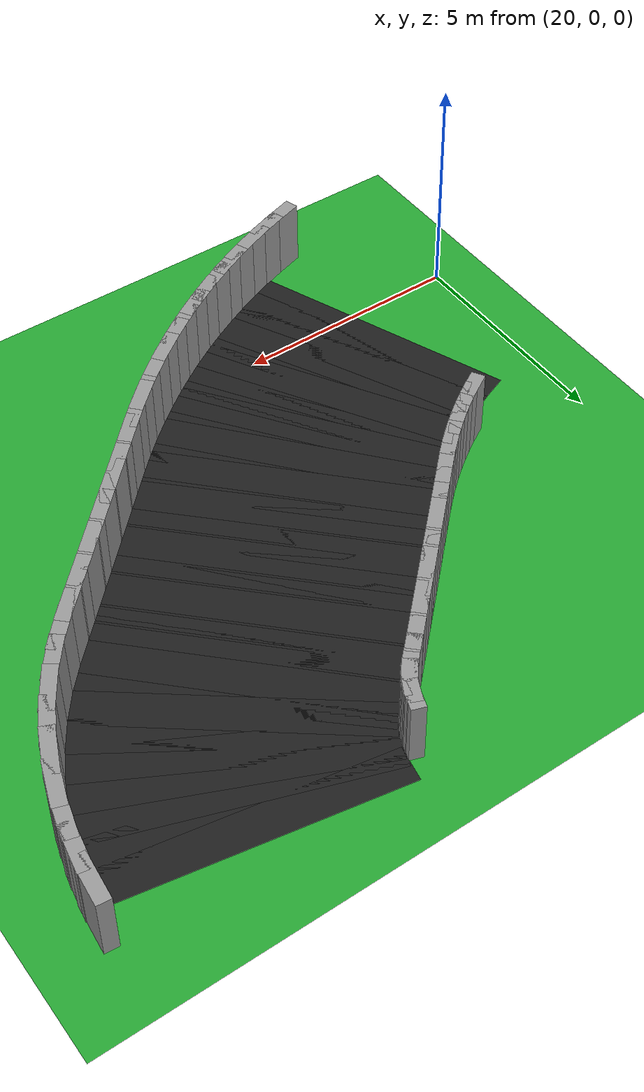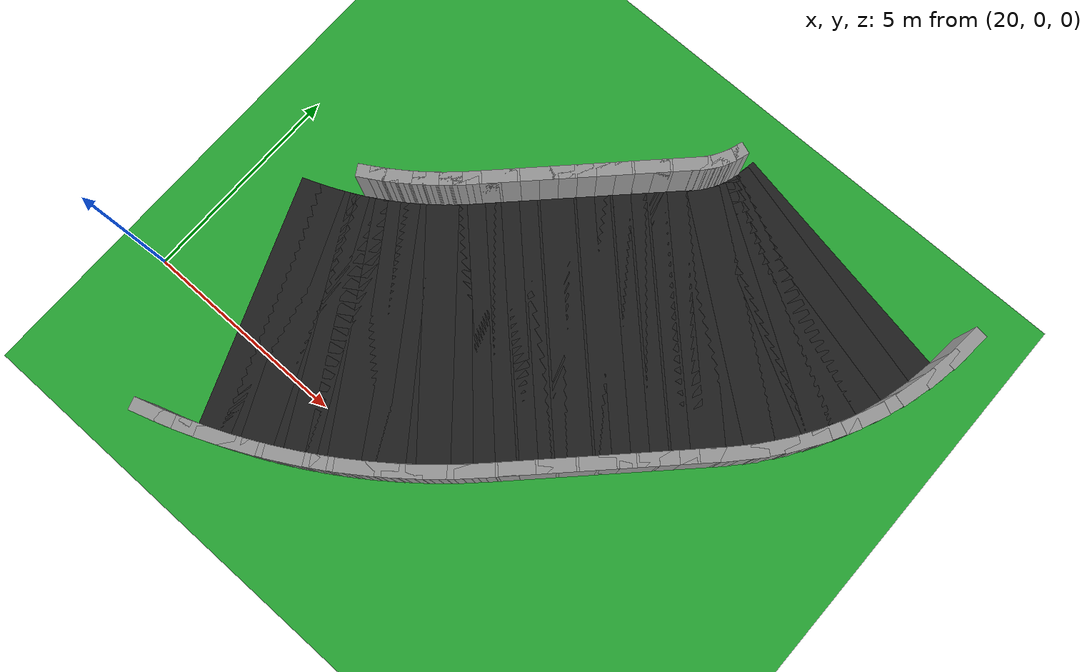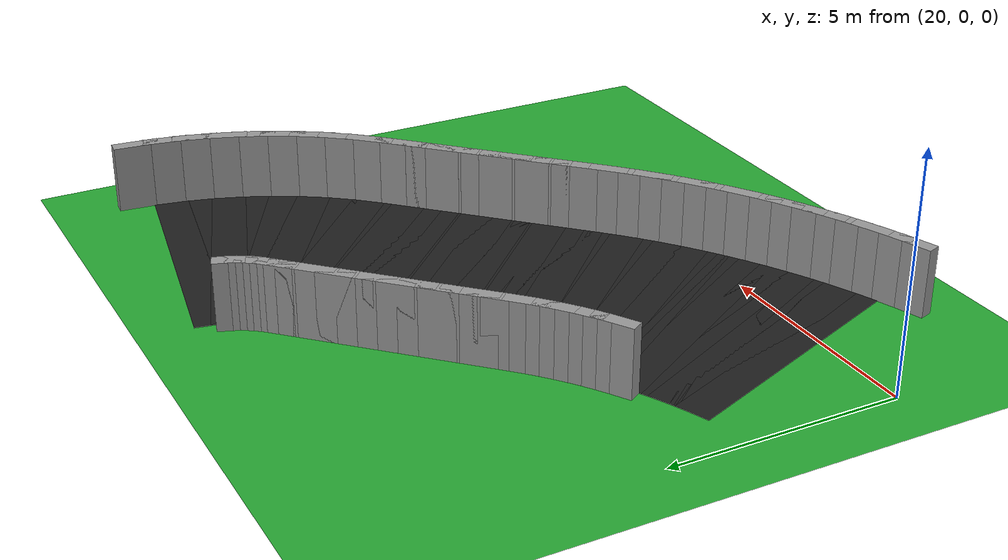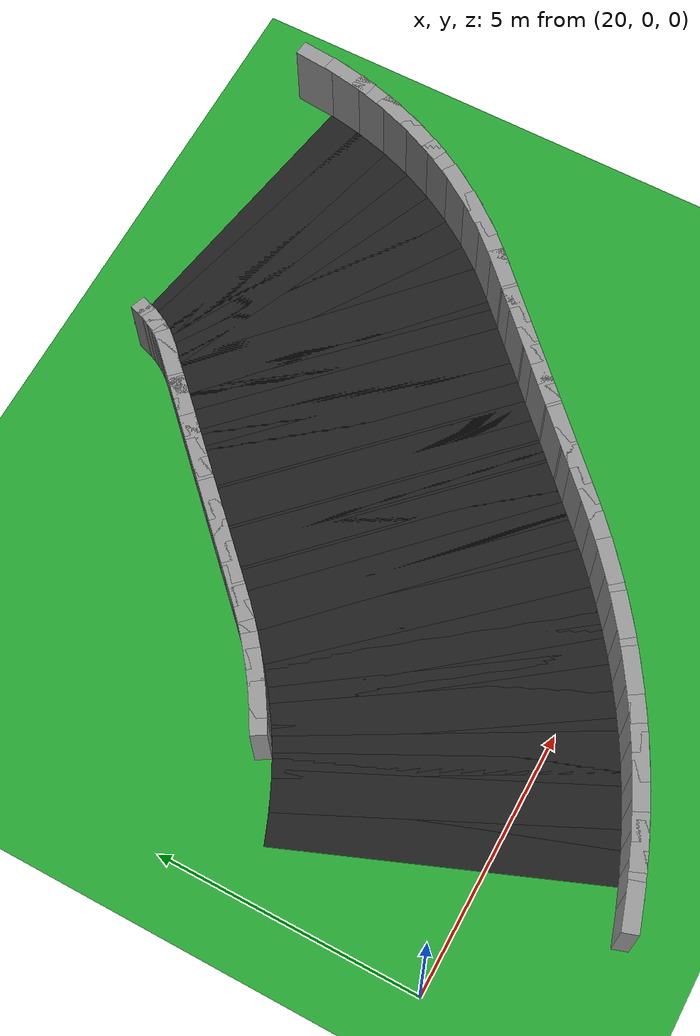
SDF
<sdf version="1.6">
 <world name="loop_road">
  <include><uri>model://sun</uri></include>
  <model name="ground_plane">
   <static>true</static>
   <link name="link">
    <collision name="collision">
     <surface><friction><ode><mu>100</mu><mu2>50</mu2></ode></friction></surface>
     <geometry><plane><normal>0 0 1</normal><size>120 120</size></plane></geometry>
    </collision>
    <visual name="visual">
     <geometry><plane><normal>0 0 1</normal><size>120 120</size></plane></geometry>
     <material>
      <script><uri>file://media/materials/scripts/gazebo.material</uri><name>Gazebo/Green</name></script>
     </material>
    </visual>
   </link>
  </model>
  <model name="curbR_54">
   <static>true</static>
   <pose>22.634 -2.422 0.750 0 0 0.31089</pose>
   <link name="link">
    <collision name="collision"><geometry><box><size>0.856 0.300 1.500</size></box></geometry></collision>
    <visual name="visual">
     <geometry><box><size>0.856 0.300 1.500</size></box></geometry>
     <material>
      <script><uri>file://media/materials/scripts/gazebo.material</uri><name>Gazebo/Grey</name></script>
     </material>
    </visual>
   </link>
  </model>
  <model name="curbR_55">
   <static>true</static>
   <pose>23.103 -2.262 0.750 0 0 0.34361</pose>
   <link name="link">
    <collision name="collision"><geometry><box><size>0.856 0.300 1.500</size></box></geometry></collision>
    <visual name="visual">
     <geometry><box><size>0.856 0.300 1.500</size></box></geometry>
     <material>
      <script><uri>file://media/materials/scripts/gazebo.material</uri><name>Gazebo/Grey</name></script>
     </material>
    </visual>
   </link>
  </model>
  <model name="asphalt_56">
   <static>true</static>
   <pose>22.410 0.841 0.005 0 0 0.37634</pose>
   <link name="link">
    <visual name="visual">
     <geometry><box><size>0.753 6.000 0.010</size></box></geometry>
     <material>
      <script><uri>file://media/materials/scripts/gazebo.material</uri><name>Gazebo/Black</name></script>
     </material>
    </visual>
   </link>
  </model>
  <model name="curbR_56">
   <static>true</static>
   <pose>23.567 -2.088 0.750 0 0 0.37634</pose>
   <link name="link">
    <collision name="collision"><geometry><box><size>0.856 0.300 1.500</size></box></geometry></collision>
    <visual name="visual">
     <geometry><box><size>0.856 0.300 1.500</size></box></geometry>
     <material>
      <script><uri>file://media/materials/scripts/gazebo.material</uri><name>Gazebo/Grey</name></script>
     </material>
    </visual>
   </link>
  </model>
  <model name="asphalt_57">
   <static>true</static>
   <pose>22.773 0.992 0.005 0 0 0.40906</pose>
   <link name="link">
    <visual name="visual">
     <geometry><box><size>0.753 6.000 0.010</size></box></geometry>
     <material>
      <script><uri>file://media/materials/scripts/gazebo.material</uri><name>Gazebo/Black</name></script>
     </material>
    </visual>
   </link>
  </model>
  <model name="curbR_57">
   <static>true</static>
   <pose>24.025 -1.898 0.750 0 0 0.40906</pose>
   <link name="link">
    <collision name="collision"><geometry><box><size>0.856 0.300 1.500</size></box></geometry></collision>
    <visual name="visual">
     <geometry><box><size>0.856 0.300 1.500</size></box></geometry>
     <material>
      <script><uri>file://media/materials/scripts/gazebo.material</uri><name>Gazebo/Grey</name></script>
     </material>
    </visual>
   </link>
  </model>
  <model name="asphalt_58">
   <static>true</static>
   <pose>23.130 1.154 0.005 0 0 0.44179</pose>
   <link name="link">
    <visual name="visual">
     <geometry><box><size>0.753 6.000 0.010</size></box></geometry>
     <material>
      <script><uri>file://media/materials/scripts/gazebo.material</uri><name>Gazebo/Black</name></script>
     </material>
    </visual>
   </link>
  </model>
  <model name="curbR_58">
   <static>true</static>
   <pose>24.477 -1.694 0.750 0 0 0.44179</pose>
   <link name="link">
    <collision name="collision"><geometry><box><size>0.856 0.300 1.500</size></box></geometry></collision>
    <visual name="visual">
     <geometry><box><size>0.856 0.300 1.500</size></box></geometry>
     <material>
      <script><uri>file://media/materials/scripts/gazebo.material</uri><name>Gazebo/Grey</name></script>
     </material>
    </visual>
   </link>
  </model>
  <model name="asphalt_59">
   <static>true</static>
   <pose>23.482 1.327 0.005 0 0 0.47451</pose>
   <link name="link">
    <visual name="visual">
     <geometry><box><size>0.753 6.000 0.010</size></box></geometry>
     <material>
      <script><uri>file://media/materials/scripts/gazebo.material</uri><name>Gazebo/Black</name></script>
     </material>
    </visual>
   </link>
  </model>
  <model name="curbR_59">
   <static>true</static>
   <pose>24.921 -1.474 0.750 0 0 0.47451</pose>
   <link name="link">
    <collision name="collision"><geometry><box><size>0.856 0.300 1.500</size></box></geometry></collision>
    <visual name="visual">
     <geometry><box><size>0.856 0.300 1.500</size></box></geometry>
     <material>
      <script><uri>file://media/materials/scripts/gazebo.material</uri><name>Gazebo/Grey</name></script>
     </material>
    </visual>
   </link>
  </model>
  <model name="asphalt_60">
   <static>true</static>
   <pose>23.829 1.512 0.005 0 0 0.50724</pose>
   <link name="link">
    <visual name="visual">
     <geometry><box><size>0.753 6.000 0.010</size></box></geometry>
     <material>
      <script><uri>file://media/materials/scripts/gazebo.material</uri><name>Gazebo/Black</name></script>
     </material>
    </visual>
   </link>
  </model>
  <model name="curbR_60">
   <static>true</static>
   <pose>25.359 -1.241 0.750 0 0 0.50724</pose>
   <link name="link">
    <collision name="collision"><geometry><box><size>0.856 0.300 1.500</size></box></geometry></collision>
    <visual name="visual">
     <geometry><box><size>0.856 0.300 1.500</size></box></geometry>
     <material>
      <script><uri>file://media/materials/scripts/gazebo.material</uri><name>Gazebo/Grey</name></script>
     </material>
    </visual>
   </link>
  </model>
  <model name="asphalt_61">
   <static>true</static>
   <pose>24.169 1.709 0.005 0 0 0.53996</pose>
   <link name="link">
    <visual name="visual">
     <geometry><box><size>0.753 6.000 0.010</size></box></geometry>
     <material>
      <script><uri>file://media/materials/scripts/gazebo.material</uri><name>Gazebo/Black</name></script>
     </material>
    </visual>
   </link>
  </model>
  <model name="curbL_61">
   <static>true</static>
   <pose>22.549 4.410 0.750 0 0 0.53996</pose>
   <link name="link">
    <collision name="collision"><geometry><box><size>0.650 0.300 1.500</size></box></geometry></collision>
    <visual name="visual">
     <geometry><box><size>0.650 0.300 1.500</size></box></geometry>
     <material>
      <script><uri>file://media/materials/scripts/gazebo.material</uri><name>Gazebo/Grey</name></script>
     </material>
    </visual>
   </link>
  </model>
  <model name="curbR_61">
   <static>true</static>
   <pose>25.788 -0.993 0.750 0 0 0.53996</pose>
   <link name="link">
    <collision name="collision"><geometry><box><size>0.856 0.300 1.500</size></box></geometry></collision>
    <visual name="visual">
     <geometry><box><size>0.856 0.300 1.500</size></box></geometry>
     <material>
      <script><uri>file://media/materials/scripts/gazebo.material</uri><name>Gazebo/Grey</name></script>
     </material>
    </visual>
   </link>
  </model>
  <model name="asphalt_62">
   <static>true</static>
   <pose>24.502 1.916 0.005 0 0 0.57269</pose>
   <link name="link">
    <visual name="visual">
     <geometry><box><size>0.753 6.000 0.010</size></box></geometry>
     <material>
      <script><uri>file://media/materials/scripts/gazebo.material</uri><name>Gazebo/Black</name></script>
     </material>
    </visual>
   </link>
  </model>
  <model name="curbL_62">
   <static>true</static>
   <pose>22.795 4.563 0.750 0 0 0.57269</pose>
   <link name="link">
    <collision name="collision"><geometry><box><size>0.650 0.300 1.500</size></box></geometry></collision>
    <visual name="visual">
     <geometry><box><size>0.650 0.300 1.500</size></box></geometry>
     <material>
      <script><uri>file://media/materials/scripts/gazebo.material</uri><name>Gazebo/Grey</name></script>
     </material>
    </visual>
   </link>
  </model>
  <model name="curbR_62">
   <static>true</static>
   <pose>26.209 -0.731 0.750 0 0 0.57269</pose>
   <link name="link">
    <collision name="collision"><geometry><box><size>0.856 0.300 1.500</size></box></geometry></collision>
    <visual name="visual">
     <geometry><box><size>0.856 0.300 1.500</size></box></geometry>
     <material>
      <script><uri>file://media/materials/scripts/gazebo.material</uri><name>Gazebo/Grey</name></script>
     </material>
    </visual>
   </link>
  </model>
  <model name="asphalt_63">
   <static>true</static>
   <pose>24.829 2.134 0.005 0 0 0.60541</pose>
   <link name="link">
    <visual name="visual">
     <geometry><box><size>0.753 6.000 0.010</size></box></geometry>
     <material>
      <script><uri>file://media/materials/scripts/gazebo.material</uri><name>Gazebo/Black</name></script>
     </material>
    </visual>
   </link>
  </model>
  <model name="curbL_63">
   <static>true</static>
   <pose>23.036 4.724 0.750 0 0 0.60541</pose>
   <link name="link">
    <collision name="collision"><geometry><box><size>0.650 0.300 1.500</size></box></geometry></collision>
    <visual name="visual">
     <geometry><box><size>0.650 0.300 1.500</size></box></geometry>
     <material>
      <script><uri>file://media/materials/scripts/gazebo.material</uri><name>Gazebo/Grey</name></script>
     </material>
    </visual>
   </link>
  </model>
  <model name="curbR_63">
   <static>true</static>
   <pose>26.621 -0.456 0.750 0 0 0.60541</pose>
   <link name="link">
    <collision name="collision"><geometry><box><size>0.856 0.300 1.500</size></box></geometry></collision>
    <visual name="visual">
     <geometry><box><size>0.856 0.300 1.500</size></box></geometry>
     <material>
      <script><uri>file://media/materials/scripts/gazebo.material</uri><name>Gazebo/Grey</name></script>
     </material>
    </visual>
   </link>
  </model>
  <model name="asphalt_64">
   <static>true</static>
   <pose>25.148 2.363 0.005 0 0 0.63814</pose>
   <link name="link">
    <visual name="visual">
     <geometry><box><size>0.753 6.000 0.010</size></box></geometry>
     <material>
      <script><uri>file://media/materials/scripts/gazebo.material</uri><name>Gazebo/Black</name></script>
     </material>
    </visual>
   </link>
  </model>
  <model name="curbL_64">
   <static>true</static>
   <pose>23.272 4.893 0.750 0 0 0.63814</pose>
   <link name="link">
    <collision name="collision"><geometry><box><size>0.650 0.300 1.500</size></box></geometry></collision>
    <visual name="visual">
     <geometry><box><size>0.650 0.300 1.500</size></box></geometry>
     <material>
      <script><uri>file://media/materials/scripts/gazebo.material</uri><name>Gazebo/Grey</name></script>
     </material>
    </visual>
   </link>
  </model>
  <model name="curbR_64">
   <static>true</static>
   <pose>27.024 -0.167 0.750 0 0 0.63814</pose>
   <link name="link">
    <collision name="collision"><geometry><box><size>0.856 0.300 1.500</size></box></geometry></collision>
    <visual name="visual">
     <geometry><box><size>0.856 0.300 1.500</size></box></geometry>
     <material>
      <script><uri>file://media/materials/scripts/gazebo.material</uri><name>Gazebo/Grey</name></script>
     </material>
    </visual>
   </link>
  </model>
  <model name="asphalt_65">
   <static>true</static>
   <pose>25.459 2.602 0.005 0 0 0.67086</pose>
   <link name="link">
    <visual name="visual">
     <geometry><box><size>0.753 6.000 0.010</size></box></geometry>
     <material>
      <script><uri>file://media/materials/scripts/gazebo.material</uri><name>Gazebo/Black</name></script>
     </material>
    </visual>
   </link>
  </model>
  <model name="curbL_65">
   <static>true</static>
   <pose>23.501 5.069 0.750 0 0 0.67086</pose>
   <link name="link">
    <collision name="collision"><geometry><box><size>0.650 0.300 1.500</size></box></geometry></collision>
    <visual name="visual">
     <geometry><box><size>0.650 0.300 1.500</size></box></geometry>
     <material>
      <script><uri>file://media/materials/scripts/gazebo.material</uri><name>Gazebo/Grey</name></script>
     </material>
    </visual>
   </link>
  </model>
  <model name="curbR_65">
   <static>true</static>
   <pose>27.417 0.135 0.750 0 0 0.67086</pose>
   <link name="link">
    <collision name="collision"><geometry><box><size>0.856 0.300 1.500</size></box></geometry></collision>
    <visual name="visual">
     <geometry><box><size>0.856 0.300 1.500</size></box></geometry>
     <material>
      <script><uri>file://media/materials/scripts/gazebo.material</uri><name>Gazebo/Grey</name></script>
     </material>
    </visual>
   </link>
  </model>
  <model name="asphalt_66">
   <static>true</static>
   <pose>25.763 2.851 0.005 0 0 0.70359</pose>
   <link name="link">
    <visual name="visual">
     <geometry><box><size>0.753 6.000 0.010</size></box></geometry>
     <material>
      <script><uri>file://media/materials/scripts/gazebo.material</uri><name>Gazebo/Black</name></script>
     </material>
    </visual>
   </link>
  </model>
  <model name="curbL_66">
   <static>true</static>
   <pose>23.725 5.253 0.750 0 0 0.70359</pose>
   <link name="link">
    <collision name="collision"><geometry><box><size>0.650 0.300 1.500</size></box></geometry></collision>
    <visual name="visual">
     <geometry><box><size>0.650 0.300 1.500</size></box></geometry>
     <material>
      <script><uri>file://media/materials/scripts/gazebo.material</uri><name>Gazebo/Grey</name></script>
     </material>
    </visual>
   </link>
  </model>
  <model name="curbR_66">
   <static>true</static>
   <pose>27.800 0.449 0.750 0 0 0.70359</pose>
   <link name="link">
    <collision name="collision"><geometry><box><size>0.856 0.300 1.500</size></box></geometry></collision>
    <visual name="visual">
     <geometry><box><size>0.856 0.300 1.500</size></box></geometry>
     <material>
      <script><uri>file://media/materials/scripts/gazebo.material</uri><name>Gazebo/Grey</name></script>
     </material>
    </visual>
   </link>
  </model>
  <model name="asphalt_67">
   <static>true</static>
   <pose>26.058 3.110 0.005 0 0 0.73631</pose>
   <link name="link">
    <visual name="visual">
     <geometry><box><size>0.753 6.000 0.010</size></box></geometry>
     <material>
      <script><uri>file://media/materials/scripts/gazebo.material</uri><name>Gazebo/Black</name></script>
     </material>
    </visual>
   </link>
  </model>
  <model name="curbL_67">
   <static>true</static>
   <pose>23.943 5.444 0.750 0 0 0.73631</pose>
   <link name="link">
    <collision name="collision"><geometry><box><size>0.650 0.300 1.500</size></box></geometry></collision>
    <visual name="visual">
     <geometry><box><size>0.650 0.300 1.500</size></box></geometry>
     <material>
      <script><uri>file://media/materials/scripts/gazebo.material</uri><name>Gazebo/Grey</name></script>
     </material>
    </visual>
   </link>
  </model>
  <model name="curbR_67">
   <static>true</static>
   <pose>28.173 0.776 0.750 0 0 0.73631</pose>
   <link name="link">
    <collision name="collision"><geometry><box><size>0.856 0.300 1.500</size></box></geometry></collision>
    <visual name="visual">
     <geometry><box><size>0.856 0.300 1.500</size></box></geometry>
     <material>
      <script><uri>file://media/materials/scripts/gazebo.material</uri><name>Gazebo/Grey</name></script>
     </material>
    </visual>
   </link>
  </model>
  <model name="asphalt_68">
   <static>true</static>
   <pose>26.345 3.378 0.005 0 0 0.76904</pose>
   <link name="link">
    <visual name="visual">
     <geometry><box><size>0.753 6.000 0.010</size></box></geometry>
     <material>
      <script><uri>file://media/materials/scripts/gazebo.material</uri><name>Gazebo/Black</name></script>
     </material>
    </visual>
   </link>
  </model>
  <model name="curbL_68">
   <static>true</static>
   <pose>24.154 5.642 0.750 0 0 0.76904</pose>
   <link name="link">
    <collision name="collision"><geometry><box><size>0.650 0.300 1.500</size></box></geometry></collision>
    <visual name="visual">
     <geometry><box><size>0.650 0.300 1.500</size></box></geometry>
     <material>
      <script><uri>file://media/materials/scripts/gazebo.material</uri><name>Gazebo/Grey</name></script>
     </material>
    </visual>
   </link>
  </model>
  <model name="curbR_68">
   <static>true</static>
   <pose>28.535 1.115 0.750 0 0 0.76904</pose>
   <link name="link">
    <collision name="collision"><geometry><box><size>0.856 0.300 1.500</size></box></geometry></collision>
    <visual name="visual">
     <geometry><box><size>0.856 0.300 1.500</size></box></geometry>
     <material>
      <script><uri>file://media/materials/scripts/gazebo.material</uri><name>Gazebo/Grey</name></script>
     </material>
    </visual>
   </link>
  </model>
  <model name="asphalt_69">
   <static>true</static>
   <pose>26.633 3.662 0.005 0 0 0.78540</pose>
   <link name="link">
    <visual name="visual">
     <geometry><box><size>0.777 6.000 0.010</size></box></geometry>
     <material>
      <script><uri>file://media/materials/scripts/gazebo.material</uri><name>Gazebo/Black</name></script>
     </material>
    </visual>
   </link>
  </model>
  <model name="curbL_69">
   <static>true</static>
   <pose>24.406 5.890 0.750 0 0 0.78540</pose>
   <link name="link">
    <collision name="collision"><geometry><box><size>0.777 0.300 1.500</size></box></geometry></collision>
    <visual name="visual">
     <geometry><box><size>0.777 0.300 1.500</size></box></geometry>
     <material>
      <script><uri>file://media/materials/scripts/gazebo.material</uri><name>Gazebo/Grey</name></script>
     </material>
    </visual>
   </link>
  </model>
  <model name="curbR_69">
   <static>true</static>
   <pose>28.860 1.435 0.750 0 0 0.78540</pose>
   <link name="link">
    <collision name="collision"><geometry><box><size>0.777 0.300 1.500</size></box></geometry></collision>
    <visual name="visual">
     <geometry><box><size>0.777 0.300 1.500</size></box></geometry>
     <material>
      <script><uri>file://media/materials/scripts/gazebo.material</uri><name>Gazebo/Grey</name></script>
     </material>
    </visual>
   </link>
  </model>
  <model name="asphalt_70">
   <static>true</static>
   <pose>26.928 3.957 0.005 0 0 0.78540</pose>
   <link name="link">
    <visual name="visual">
     <geometry><box><size>0.777 6.000 0.010</size></box></geometry>
     <material>
      <script><uri>file://media/materials/scripts/gazebo.material</uri><name>Gazebo/Black</name></script>
     </material>
    </visual>
   </link>
  </model>
  <model name="curbL_70">
   <static>true</static>
   <pose>24.700 6.184 0.750 0 0 0.78540</pose>
   <link name="link">
    <collision name="collision"><geometry><box><size>0.777 0.300 1.500</size></box></geometry></collision>
    <visual name="visual">
     <geometry><box><size>0.777 0.300 1.500</size></box></geometry>
     <material>
      <script><uri>file://media/materials/scripts/gazebo.material</uri><name>Gazebo/Grey</name></script>
     </material>
    </visual>
   </link>
  </model>
  <model name="curbR_70">
   <static>true</static>
   <pose>29.155 1.729 0.750 0 0 0.78540</pose>
   <link name="link">
    <collision name="collision"><geometry><box><size>0.777 0.300 1.500</size></box></geometry></collision>
    <visual name="visual">
     <geometry><box><size>0.777 0.300 1.500</size></box></geometry>
     <material>
      <script><uri>file://media/materials/scripts/gazebo.material</uri><name>Gazebo/Grey</name></script>
     </material>
    </visual>
   </link>
  </model>
  <model name="asphalt_71">
   <static>true</static>
   <pose>27.222 4.251 0.005 0 0 0.78540</pose>
   <link name="link">
    <visual name="visual">
     <geometry><box><size>0.777 6.000 0.010</size></box></geometry>
     <material>
      <script><uri>file://media/materials/scripts/gazebo.material</uri><name>Gazebo/Black</name></script>
     </material>
    </visual>
   </link>
  </model>
  <model name="curbL_71">
   <static>true</static>
   <pose>24.995 6.479 0.750 0 0 0.78540</pose>
   <link name="link">
    <collision name="collision"><geometry><box><size>0.777 0.300 1.500</size></box></geometry></collision>
    <visual name="visual">
     <geometry><box><size>0.777 0.300 1.500</size></box></geometry>
     <material>
      <script><uri>file://media/materials/scripts/gazebo.material</uri><name>Gazebo/Grey</name></script>
     </material>
    </visual>
   </link>
  </model>
  <model name="curbR_71">
   <static>true</static>
   <pose>29.450 2.024 0.750 0 0 0.78540</pose>
   <link name="link">
    <collision name="collision"><geometry><box><size>0.777 0.300 1.500</size></box></geometry></collision>
    <visual name="visual">
     <geometry><box><size>0.777 0.300 1.500</size></box></geometry>
     <material>
      <script><uri>file://media/materials/scripts/gazebo.material</uri><name>Gazebo/Grey</name></script>
     </material>
    </visual>
   </link>
  </model>
  <model name="asphalt_72">
   <static>true</static>
   <pose>27.517 4.546 0.005 0 0 0.78540</pose>
   <link name="link">
    <visual name="visual">
     <geometry><box><size>0.777 6.000 0.010</size></box></geometry>
     <material>
      <script><uri>file://media/materials/scripts/gazebo.material</uri><name>Gazebo/Black</name></script>
     </material>
    </visual>
   </link>
  </model>
  <model name="curbL_72">
   <static>true</static>
   <pose>25.289 6.773 0.750 0 0 0.78540</pose>
   <link name="link">
    <collision name="collision"><geometry><box><size>0.777 0.300 1.500</size></box></geometry></collision>
    <visual name="visual">
     <geometry><box><size>0.777 0.300 1.500</size></box></geometry>
     <material>
      <script><uri>file://media/materials/scripts/gazebo.material</uri><name>Gazebo/Grey</name></script>
     </material>
    </visual>
   </link>
  </model>
  <model name="curbR_72">
   <static>true</static>
   <pose>29.744 2.319 0.750 0 0 0.78540</pose>
   <link name="link">
    <collision name="collision"><geometry><box><size>0.777 0.300 1.500</size></box></geometry></collision>
    <visual name="visual">
     <geometry><box><size>0.777 0.300 1.500</size></box></geometry>
     <material>
      <script><uri>file://media/materials/scripts/gazebo.material</uri><name>Gazebo/Grey</name></script>
     </material>
    </visual>
   </link>
  </model>
  <model name="asphalt_73">
   <static>true</static>
   <pose>27.811 4.841 0.005 0 0 0.78540</pose>
   <link name="link">
    <visual name="visual">
     <geometry><box><size>0.777 6.000 0.010</size></box></geometry>
     <material>
      <script><uri>file://media/materials/scripts/gazebo.material</uri><name>Gazebo/Black</name></script>
     </material>
    </visual>
   </link>
  </model>
  <model name="curbL_73">
   <static>true</static>
   <pose>25.584 7.068 0.750 0 0 0.78540</pose>
   <link name="link">
    <collision name="collision"><geometry><box><size>0.777 0.300 1.500</size></box></geometry></collision>
    <visual name="visual">
     <geometry><box><size>0.777 0.300 1.500</size></box></geometry>
     <material>
      <script><uri>file://media/materials/scripts/gazebo.material</uri><name>Gazebo/Grey</name></script>
     </material>
    </visual>
   </link>
  </model>
  <model name="curbR_73">
   <static>true</static>
   <pose>30.039 2.613 0.750 0 0 0.78540</pose>
   <link name="link">
    <collision name="collision"><geometry><box><size>0.777 0.300 1.500</size></box></geometry></collision>
    <visual name="visual">
     <geometry><box><size>0.777 0.300 1.500</size></box></geometry>
     <material>
      <script><uri>file://media/materials/scripts/gazebo.material</uri><name>Gazebo/Grey</name></script>
     </material>
    </visual>
   </link>
  </model>
  <model name="asphalt_74">
   <static>true</static>
   <pose>28.106 5.135 0.005 0 0 0.78540</pose>
   <link name="link">
    <visual name="visual">
     <geometry><box><size>0.777 6.000 0.010</size></box></geometry>
     <material>
      <script><uri>file://media/materials/scripts/gazebo.material</uri><name>Gazebo/Black</name></script>
     </material>
    </visual>
   </link>
  </model>
  <model name="curbL_74">
   <static>true</static>
   <pose>25.879 7.363 0.750 0 0 0.78540</pose>
   <link name="link">
    <collision name="collision"><geometry><box><size>0.777 0.300 1.500</size></box></geometry></collision>
    <visual name="visual">
     <geometry><box><size>0.777 0.300 1.500</size></box></geometry>
     <material>
      <script><uri>file://media/materials/scripts/gazebo.material</uri><name>Gazebo/Grey</name></script>
     </material>
    </visual>
   </link>
  </model>
  <model name="curbR_74">
   <static>true</static>
   <pose>30.333 2.908 0.750 0 0 0.78540</pose>
   <link name="link">
    <collision name="collision"><geometry><box><size>0.777 0.300 1.500</size></box></geometry></collision>
    <visual name="visual">
     <geometry><box><size>0.777 0.300 1.500</size></box></geometry>
     <material>
      <script><uri>file://media/materials/scripts/gazebo.material</uri><name>Gazebo/Grey</name></script>
     </material>
    </visual>
   </link>
  </model>
  <model name="asphalt_75">
   <static>true</static>
   <pose>28.401 5.430 0.005 0 0 0.78540</pose>
   <link name="link">
    <visual name="visual">
     <geometry><box><size>0.777 6.000 0.010</size></box></geometry>
     <material>
      <script><uri>file://media/materials/scripts/gazebo.material</uri><name>Gazebo/Black</name></script>
     </material>
    </visual>
   </link>
  </model>
  <model name="curbL_75">
   <static>true</static>
   <pose>26.173 7.657 0.750 0 0 0.78540</pose>
   <link name="link">
    <collision name="collision"><geometry><box><size>0.777 0.300 1.500</size></box></geometry></collision>
    <visual name="visual">
     <geometry><box><size>0.777 0.300 1.500</size></box></geometry>
     <material>
      <script><uri>file://media/materials/scripts/gazebo.material</uri><name>Gazebo/Grey</name></script>
     </material>
    </visual>
   </link>
  </model>
  <model name="curbR_75">
   <static>true</static>
   <pose>30.628 3.203 0.750 0 0 0.78540</pose>
   <link name="link">
    <collision name="collision"><geometry><box><size>0.777 0.300 1.500</size></box></geometry></collision>
    <visual name="visual">
     <geometry><box><size>0.777 0.300 1.500</size></box></geometry>
     <material>
      <script><uri>file://media/materials/scripts/gazebo.material</uri><name>Gazebo/Grey</name></script>
     </material>
    </visual>
   </link>
  </model>
  <model name="asphalt_76">
   <static>true</static>
   <pose>28.695 5.725 0.005 0 0 0.78540</pose>
   <link name="link">
    <visual name="visual">
     <geometry><box><size>0.777 6.000 0.010</size></box></geometry>
     <material>
      <script><uri>file://media/materials/scripts/gazebo.material</uri><name>Gazebo/Black</name></script>
     </material>
    </visual>
   </link>
  </model>
  <model name="curbL_76">
   <static>true</static>
   <pose>26.468 7.952 0.750 0 0 0.78540</pose>
   <link name="link">
    <collision name="collision"><geometry><box><size>0.777 0.300 1.500</size></box></geometry></collision>
    <visual name="visual">
     <geometry><box><size>0.777 0.300 1.500</size></box></geometry>
     <material>
      <script><uri>file://media/materials/scripts/gazebo.material</uri><name>Gazebo/Grey</name></script>
     </material>
    </visual>
   </link>
  </model>
  <model name="curbR_76">
   <static>true</static>
   <pose>30.923 3.497 0.750 0 0 0.78540</pose>
   <link name="link">
    <collision name="collision"><geometry><box><size>0.777 0.300 1.500</size></box></geometry></collision>
    <visual name="visual">
     <geometry><box><size>0.777 0.300 1.500</size></box></geometry>
     <material>
      <script><uri>file://media/materials/scripts/gazebo.material</uri><name>Gazebo/Grey</name></script>
     </material>
    </visual>
   </link>
  </model>
  <model name="asphalt_77">
   <static>true</static>
   <pose>28.990 6.019 0.005 0 0 0.78540</pose>
   <link name="link">
    <visual name="visual">
     <geometry><box><size>0.777 6.000 0.010</size></box></geometry>
     <material>
      <script><uri>file://media/materials/scripts/gazebo.material</uri><name>Gazebo/Black</name></script>
     </material>
    </visual>
   </link>
  </model>
  <model name="curbL_77">
   <static>true</static>
   <pose>26.763 8.247 0.750 0 0 0.78540</pose>
   <link name="link">
    <collision name="collision"><geometry><box><size>0.777 0.300 1.500</size></box></geometry></collision>
    <visual name="visual">
     <geometry><box><size>0.777 0.300 1.500</size></box></geometry>
     <material>
      <script><uri>file://media/materials/scripts/gazebo.material</uri><name>Gazebo/Grey</name></script>
     </material>
    </visual>
   </link>
  </model>
  <model name="curbR_77">
   <static>true</static>
   <pose>31.217 3.792 0.750 0 0 0.78540</pose>
   <link name="link">
    <collision name="collision"><geometry><box><size>0.777 0.300 1.500</size></box></geometry></collision>
    <visual name="visual">
     <geometry><box><size>0.777 0.300 1.500</size></box></geometry>
     <material>
      <script><uri>file://media/materials/scripts/gazebo.material</uri><name>Gazebo/Grey</name></script>
     </material>
    </visual>
   </link>
  </model>
  <model name="asphalt_78">
   <static>true</static>
   <pose>29.285 6.314 0.005 0 0 0.78540</pose>
   <link name="link">
    <visual name="visual">
     <geometry><box><size>0.777 6.000 0.010</size></box></geometry>
     <material>
      <script><uri>file://media/materials/scripts/gazebo.material</uri><name>Gazebo/Black</name></script>
     </material>
    </visual>
   </link>
  </model>
  <model name="curbL_78">
   <static>true</static>
   <pose>27.057 8.541 0.750 0 0 0.78540</pose>
   <link name="link">
    <collision name="collision"><geometry><box><size>0.777 0.300 1.500</size></box></geometry></collision>
    <visual name="visual">
     <geometry><box><size>0.777 0.300 1.500</size></box></geometry>
     <material>
      <script><uri>file://media/materials/scripts/gazebo.material</uri><name>Gazebo/Grey</name></script>
     </material>
    </visual>
   </link>
  </model>
  <model name="curbR_78">
   <static>true</static>
   <pose>31.512 4.086 0.750 0 0 0.78540</pose>
   <link name="link">
    <collision name="collision"><geometry><box><size>0.777 0.300 1.500</size></box></geometry></collision>
    <visual name="visual">
     <geometry><box><size>0.777 0.300 1.500</size></box></geometry>
     <material>
      <script><uri>file://media/materials/scripts/gazebo.material</uri><name>Gazebo/Grey</name></script>
     </material>
    </visual>
   </link>
  </model>
  <model name="asphalt_79">
   <static>true</static>
   <pose>29.579 6.608 0.005 0 0 0.78540</pose>
   <link name="link">
    <visual name="visual">
     <geometry><box><size>0.777 6.000 0.010</size></box></geometry>
     <material>
      <script><uri>file://media/materials/scripts/gazebo.material</uri><name>Gazebo/Black</name></script>
     </material>
    </visual>
   </link>
  </model>
  <model name="curbL_79">
   <static>true</static>
   <pose>27.352 8.836 0.750 0 0 0.78540</pose>
   <link name="link">
    <collision name="collision"><geometry><box><size>0.777 0.300 1.500</size></box></geometry></collision>
    <visual name="visual">
     <geometry><box><size>0.777 0.300 1.500</size></box></geometry>
     <material>
      <script><uri>file://media/materials/scripts/gazebo.material</uri><name>Gazebo/Grey</name></script>
     </material>
    </visual>
   </link>
  </model>
  <model name="curbR_79">
   <static>true</static>
   <pose>31.807 4.381 0.750 0 0 0.78540</pose>
   <link name="link">
    <collision name="collision"><geometry><box><size>0.777 0.300 1.500</size></box></geometry></collision>
    <visual name="visual">
     <geometry><box><size>0.777 0.300 1.500</size></box></geometry>
     <material>
      <script><uri>file://media/materials/scripts/gazebo.material</uri><name>Gazebo/Grey</name></script>
     </material>
    </visual>
   </link>
  </model>
  <model name="asphalt_80">
   <static>true</static>
   <pose>29.874 6.903 0.005 0 0 0.78540</pose>
   <link name="link">
    <visual name="visual">
     <geometry><box><size>0.777 6.000 0.010</size></box></geometry>
     <material>
      <script><uri>file://media/materials/scripts/gazebo.material</uri><name>Gazebo/Black</name></script>
     </material>
    </visual>
   </link>
  </model>
  <model name="curbL_80">
   <static>true</static>
   <pose>27.646 9.130 0.750 0 0 0.78540</pose>
   <link name="link">
    <collision name="collision"><geometry><box><size>0.777 0.300 1.500</size></box></geometry></collision>
    <visual name="visual">
     <geometry><box><size>0.777 0.300 1.500</size></box></geometry>
     <material>
      <script><uri>file://media/materials/scripts/gazebo.material</uri><name>Gazebo/Grey</name></script>
     </material>
    </visual>
   </link>
  </model>
  <model name="curbR_80">
   <static>true</static>
   <pose>32.101 4.676 0.750 0 0 0.78540</pose>
   <link name="link">
    <collision name="collision"><geometry><box><size>0.777 0.300 1.500</size></box></geometry></collision>
    <visual name="visual">
     <geometry><box><size>0.777 0.300 1.500</size></box></geometry>
     <material>
      <script><uri>file://media/materials/scripts/gazebo.material</uri><name>Gazebo/Grey</name></script>
     </material>
    </visual>
   </link>
  </model>
  <model name="asphalt_81">
   <static>true</static>
   <pose>30.159 7.200 0.005 0 0 0.82602</pose>
   <link name="link">
    <visual name="visual">
     <geometry><box><size>0.766 6.000 0.010</size></box></geometry>
     <material>
      <script><uri>file://media/materials/scripts/gazebo.material</uri><name>Gazebo/Black</name></script>
     </material>
    </visual>
   </link>
  </model>
  <model name="curbL_81">
   <static>true</static>
   <pose>27.845 9.333 0.750 0 0 0.82602</pose>
   <link name="link">
    <collision name="collision"><geometry><box><size>0.510 0.300 1.500</size></box></geometry></collision>
    <visual name="visual">
     <geometry><box><size>0.510 0.300 1.500</size></box></geometry>
     <material>
      <script><uri>file://media/materials/scripts/gazebo.material</uri><name>Gazebo/Grey</name></script>
     </material>
    </visual>
   </link>
  </model>
  <model name="curbR_81">
   <static>true</static>
   <pose>32.473 5.066 0.750 0 0 0.82602</pose>
   <link name="link">
    <collision name="collision"><geometry><box><size>1.022 0.300 1.500</size></box></geometry></collision>
    <visual name="visual">
     <geometry><box><size>1.022 0.300 1.500</size></box></geometry>
     <material>
      <script><uri>file://media/materials/scripts/gazebo.material</uri><name>Gazebo/Grey</name></script>
     </material>
    </visual>
   </link>
  </model>
  <model name="asphalt_82">
   <static>true</static>
   <pose>30.422 7.509 0.005 0 0 0.90727</pose>
   <link name="link">
    <visual name="visual">
     <geometry><box><size>0.766 6.000 0.010</size></box></geometry>
     <material>
      <script><uri>file://media/materials/scripts/gazebo.material</uri><name>Gazebo/Black</name></script>
     </material>
    </visual>
   </link>
  </model>
  <model name="curbL_82">
   <static>true</static>
   <pose>27.942 9.448 0.750 0 0 0.90727</pose>
   <link name="link">
    <collision name="collision"><geometry><box><size>0.510 0.300 1.500</size></box></geometry></collision>
    <visual name="visual">
     <geometry><box><size>0.510 0.300 1.500</size></box></geometry>
     <material>
      <script><uri>file://media/materials/scripts/gazebo.material</uri><name>Gazebo/Grey</name></script>
     </material>
    </visual>
   </link>
  </model>
  <model name="curbR_82">
   <static>true</static>
   <pose>32.901 5.571 0.750 0 0 0.90727</pose>
   <link name="link">
    <collision name="collision"><geometry><box><size>1.022 0.300 1.500</size></box></geometry></collision>
    <visual name="visual">
     <geometry><box><size>1.022 0.300 1.500</size></box></geometry>
     <material>
      <script><uri>file://media/materials/scripts/gazebo.material</uri><name>Gazebo/Grey</name></script>
     </material>
    </visual>
   </link>
  </model>
  <model name="asphalt_83">
   <static>true</static>
   <pose>30.658 7.839 0.005 0 0 0.98852</pose>
   <link name="link">
    <visual name="visual">
     <geometry><box><size>0.766 6.000 0.010</size></box></geometry>
     <material>
      <script><uri>file://media/materials/scripts/gazebo.material</uri><name>Gazebo/Black</name></script>
     </material>
    </visual>
   </link>
  </model>
  <model name="curbL_83">
   <static>true</static>
   <pose>28.030 9.570 0.750 0 0 0.98852</pose>
   <link name="link">
    <collision name="collision"><geometry><box><size>0.510 0.300 1.500</size></box></geometry></collision>
    <visual name="visual">
     <geometry><box><size>0.510 0.300 1.500</size></box></geometry>
     <material>
      <script><uri>file://media/materials/scripts/gazebo.material</uri><name>Gazebo/Grey</name></script>
     </material>
    </visual>
   </link>
  </model>
  <model name="curbR_83">
   <static>true</static>
   <pose>33.287 6.108 0.750 0 0 0.98852</pose>
   <link name="link">
    <collision name="collision"><geometry><box><size>1.022 0.300 1.500</size></box></geometry></collision>
    <visual name="visual">
     <geometry><box><size>1.022 0.300 1.500</size></box></geometry>
     <material>
      <script><uri>file://media/materials/scripts/gazebo.material</uri><name>Gazebo/Grey</name></script>
     </material>
    </visual>
   </link>
  </model>
  <model name="asphalt_84">
   <static>true</static>
   <pose>30.868 8.187 0.005 0 0 1.06977</pose>
   <link name="link">
    <visual name="visual">
     <geometry><box><size>0.766 6.000 0.010</size></box></geometry>
     <material>
      <script><uri>file://media/materials/scripts/gazebo.material</uri><name>Gazebo/Black</name></script>
     </material>
    </visual>
   </link>
  </model>
  <model name="curbL_84">
   <static>true</static>
   <pose>28.107 9.698 0.750 0 0 1.06977</pose>
   <link name="link">
    <collision name="collision"><geometry><box><size>0.510 0.300 1.500</size></box></geometry></collision>
    <visual name="visual">
     <geometry><box><size>0.510 0.300 1.500</size></box></geometry>
     <material>
      <script><uri>file://media/materials/scripts/gazebo.material</uri><name>Gazebo/Grey</name></script>
     </material>
    </visual>
   </link>
  </model>
  <model name="curbR_84">
   <static>true</static>
   <pose>33.628 6.675 0.750 0 0 1.06977</pose>
   <link name="link">
    <collision name="collision"><geometry><box><size>1.022 0.300 1.500</size></box></geometry></collision>
    <visual name="visual">
     <geometry><box><size>1.022 0.300 1.500</size></box></geometry>
     <material>
      <script><uri>file://media/materials/scripts/gazebo.material</uri><name>Gazebo/Grey</name></script>
     </material>
    </visual>
   </link>
  </model>
  <model name="asphalt_85">
   <static>true</static>
   <pose>31.048 8.550 0.005 0 0 1.15101</pose>
   <link name="link">
    <visual name="visual">
     <geometry><box><size>0.766 6.000 0.010</size></box></geometry>
     <material>
      <script><uri>file://media/materials/scripts/gazebo.material</uri><name>Gazebo/Black</name></script>
     </material>
    </visual>
   </link>
  </model>
  <model name="curbL_85">
   <static>true</static>
   <pose>28.174 9.833 0.750 0 0 1.15101</pose>
   <link name="link">
    <collision name="collision"><geometry><box><size>0.510 0.300 1.500</size></box></geometry></collision>
    <visual name="visual">
     <geometry><box><size>0.510 0.300 1.500</size></box></geometry>
     <material>
      <script><uri>file://media/materials/scripts/gazebo.material</uri><name>Gazebo/Grey</name></script>
     </material>
    </visual>
   </link>
  </model>
  <model name="curbR_85">
   <static>true</static>
   <pose>33.922 7.267 0.750 0 0 1.15101</pose>
   <link name="link">
    <collision name="collision"><geometry><box><size>1.022 0.300 1.500</size></box></geometry></collision>
    <visual name="visual">
     <geometry><box><size>1.022 0.300 1.500</size></box></geometry>
     <material>
      <script><uri>file://media/materials/scripts/gazebo.material</uri><name>Gazebo/Grey</name></script>
     </material>
    </visual>
   </link>
  </model>
  <model name="asphalt_86">
   <static>true</static>
   <pose>31.198 8.927 0.005 0 0 1.23226</pose>
   <link name="link">
    <visual name="visual">
     <geometry><box><size>0.766 6.000 0.010</size></box></geometry>
     <material>
      <script><uri>file://media/materials/scripts/gazebo.material</uri><name>Gazebo/Black</name></script>
     </material>
    </visual>
   </link>
  </model>
  <model name="curbL_86">
   <static>true</static>
   <pose>28.230 9.973 0.750 0 0 1.23226</pose>
   <link name="link">
    <collision name="collision"><geometry><box><size>0.510 0.300 1.500</size></box></geometry></collision>
    <visual name="visual">
     <geometry><box><size>0.510 0.300 1.500</size></box></geometry>
     <material>
      <script><uri>file://media/materials/scripts/gazebo.material</uri><name>Gazebo/Grey</name></script>
     </material>
    </visual>
   </link>
  </model>
  <model name="curbR_86">
   <static>true</static>
   <pose>34.167 7.882 0.750 0 0 1.23226</pose>
   <link name="link">
    <collision name="collision"><geometry><box><size>1.022 0.300 1.500</size></box></geometry></collision>
    <visual name="visual">
     <geometry><box><size>1.022 0.300 1.500</size></box></geometry>
     <material>
      <script><uri>file://media/materials/scripts/gazebo.material</uri><name>Gazebo/Grey</name></script>
     </material>
    </visual>
   </link>
  </model>
  <model name="asphalt_87">
   <static>true</static>
   <pose>31.317 9.315 0.005 0 0 1.31351</pose>
   <link name="link">
    <visual name="visual">
     <geometry><box><size>0.766 6.000 0.010</size></box></geometry>
     <material>
      <script><uri>file://media/materials/scripts/gazebo.material</uri><name>Gazebo/Black</name></script>
     </material>
    </visual>
   </link>
  </model>
  <model name="curbR_87">
   <static>true</static>
   <pose>34.361 8.514 0.750 0 0 1.31351</pose>
   <link name="link">
    <collision name="collision"><geometry><box><size>1.022 0.300 1.500</size></box></geometry></collision>
    <visual name="visual">
     <geometry><box><size>1.022 0.300 1.500</size></box></geometry>
     <material>
      <script><uri>file://media/materials/scripts/gazebo.material</uri><name>Gazebo/Grey</name></script>
     </material>
    </visual>
   </link>
  </model>
  <model name="asphalt_88">
   <static>true</static>
   <pose>31.405 9.712 0.005 0 0 1.39476</pose>
   <link name="link">
    <visual name="visual">
     <geometry><box><size>0.766 6.000 0.010</size></box></geometry>
     <material>
      <script><uri>file://media/materials/scripts/gazebo.material</uri><name>Gazebo/Black</name></script>
     </material>
    </visual>
   </link>
  </model>
  <model name="curbR_88">
   <static>true</static>
   <pose>34.503 9.161 0.750 0 0 1.39476</pose>
   <link name="link">
    <collision name="collision"><geometry><box><size>1.022 0.300 1.500</size></box></geometry></collision>
    <visual name="visual">
     <geometry><box><size>1.022 0.300 1.500</size></box></geometry>
     <material>
      <script><uri>file://media/materials/scripts/gazebo.material</uri><name>Gazebo/Grey</name></script>
     </material>
    </visual>
   </link>
  </model>
  <model name="curbR_89">
   <static>true</static>
   <pose>34.593 9.816 0.750 0 0 1.47601</pose>
   <link name="link">
    <collision name="collision"><geometry><box><size>1.022 0.300 1.500</size></box></geometry></collision>
    <visual name="visual">
     <geometry><box><size>1.022 0.300 1.500</size></box></geometry>
     <material>
      <script><uri>file://media/materials/scripts/gazebo.material</uri><name>Gazebo/Grey</name></script>
     </material>
    </visual>
   </link>
  </model>
 </world>
</sdf>
